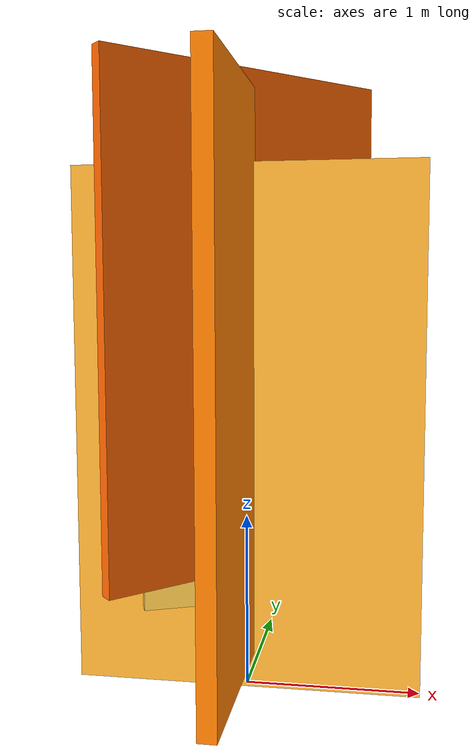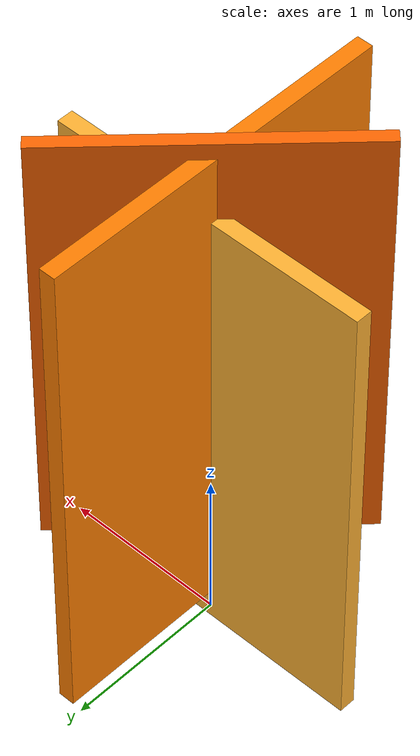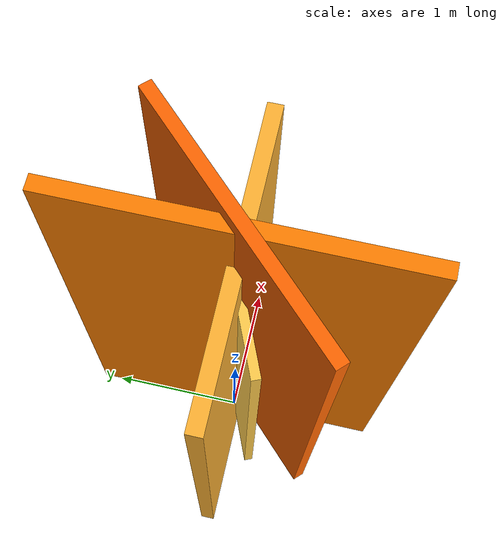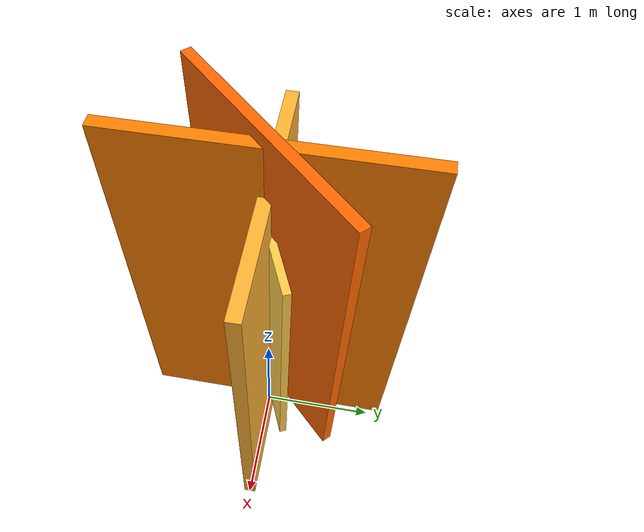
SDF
<?xml version="1.0" ?>
<sdf version="1.8">
  <model name="fire_2d">
    <static>true</static>
    <link name="fire_link">
      <pose>0 0 0 0 0 0</pose>

      <!-- Main fire block with reduced opacity and adjusted glow -->
      <visual name="fire_visual">
        <pose>0 0 1.5 0 0 0</pose>
        <geometry>
          <box>
            <size>2.0 0.1 3.0</size>
          </box>
        </geometry>
        <material>
          <ambient>1.0 0.9 0.3 1.0</ambient>
          <diffuse>1.0 0.7 0.2 1.0</diffuse>
          <specular>0.3 0.15 0.05 1.0</specular>
          <emissive>0.5 0.4 0.15 1</emissive>
          <pbr>
            <metal>
              <albedo_map>file:///home/adji714/custom_gazebo_worlds/forest/fire.png</albedo_map>
              <metalness>0.0</metalness>
              <roughness>0.5</roughness>
            </metal>
          </pbr>
        </material>
        <transparency>0</transparency>
        <cast_shadows>false</cast_shadows>
      </visual>

      <!-- Cross fire block -->
      <visual name="fire_billboard">
        <pose>0 0 1.8 0 0 1.57</pose>
        <geometry>
          <box>
            <size>2.2 0.1 3.2</size>
          </box>
        </geometry>
        <material>
          <ambient>1.0 0.7 0.1 1.0</ambient>
          <diffuse>1.0 0.5 0.0 1.0</diffuse>
          <specular>0.1 0.05 0.0 1.0</specular>
          <emissive>0.5 0.2 0.0 1</emissive>
          <pbr>
            <metal>
              <albedo_map>file:///home/adji714/custom_gazebo_worlds/forest/fire.png</albedo_map>
              <metalness>0.0</metalness>
              <roughness>0.6</roughness>
            </metal>
          </pbr>
        </material>
        <transparency>0</transparency>
        <cast_shadows>false</cast_shadows>
      </visual>

      <!-- Third fire block -->
      <visual name="fire_cross">
        <pose>0 0 2.1 0 0 0.785</pose>
        <geometry>
          <box>
            <size>1.8 0.08 2.8</size>
          </box>
        </geometry>
        <material>
          <ambient>1.0 0.6 0.0 1.0</ambient>
          <diffuse>1.0 0.4 0.0 1.0</diffuse>
          <specular>0.1 0.05 0.0 1.0</specular>
          <emissive>0.45 0.15 0.0 1</emissive>
          <pbr>
            <metal>
              <albedo_map>file:///home/adji714/custom_gazebo_worlds/forest/fire.png</albedo_map>
              <metalness>0.0</metalness>
              <roughness>0.6</roughness>
            </metal>
          </pbr>
        </material>
        <transparency>0</transparency>
        <cast_shadows>false</cast_shadows>
      </visual>

      <!-- Core with highest glow intensity -->
      <visual name="fire_core">
        <pose>0 0 1.6 0 0 0.4</pose>
        <geometry>
          <box>
            <size>1.2 0.06 2.2</size>
          </box>
        </geometry>
        <material>
          <ambient>1.0 0.9 0.4 1.0</ambient>
          <diffuse>1.0 0.8 0.3 1.0</diffuse>
          <specular>0.0 0.0 0.0 1.0</specular>
          <emissive>0.5 0.45 0.2 1</emissive>
          <pbr>
            <metal>
              <albedo_map>file:///home/adji714/custom_gazebo_worlds/forest/fire.png</albedo_map>
              <metalness>0.0</metalness>
              <roughness>0.7</roughness>
            </metal>
          </pbr>
        </material>
        <transparency>0</transparency>
        <cast_shadows>false</cast_shadows>
      </visual>

      <!-- Enhanced fire glow light (unchanged) -->
      <light type="point" name="fire_light">
        <pose>0 0 2.0 0 0 0</pose>
        <diffuse>1.0 0.7 0.2 1</diffuse>
        <specular>1.0 0.9 0.4 1</specular>
        <intensity>15</intensity>
        <attenuation>
          <range>20</range>
          <constant>0.2</constant>
          <linear>0.05</linear>
          <quadratic>0.005</quadratic>
        </attenuation>
      </light>
    </link>
  </model>
</sdf>
